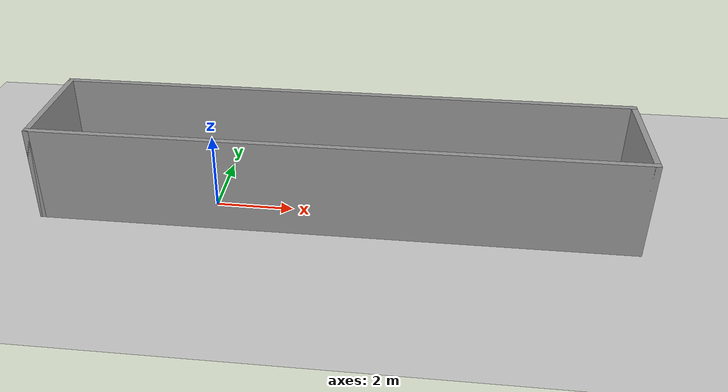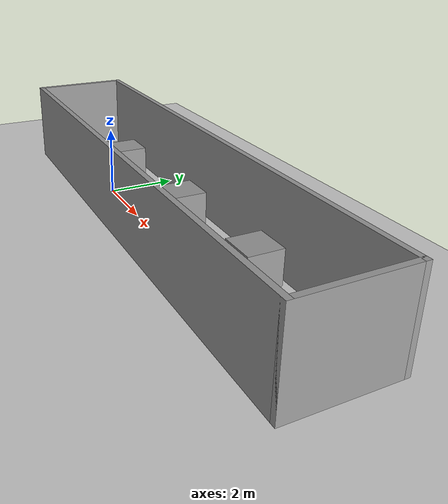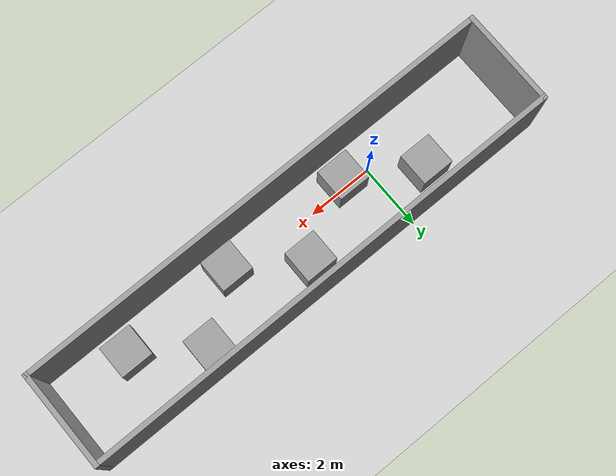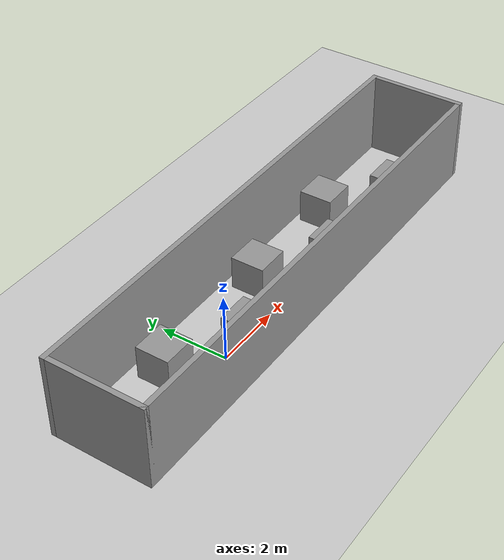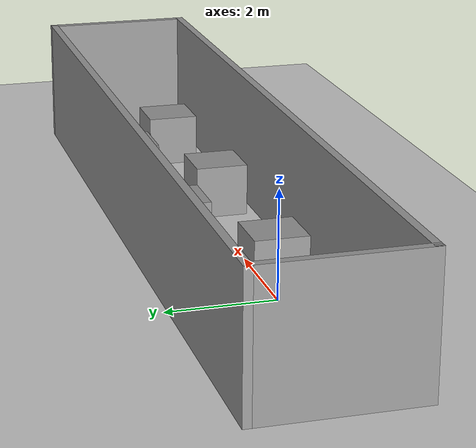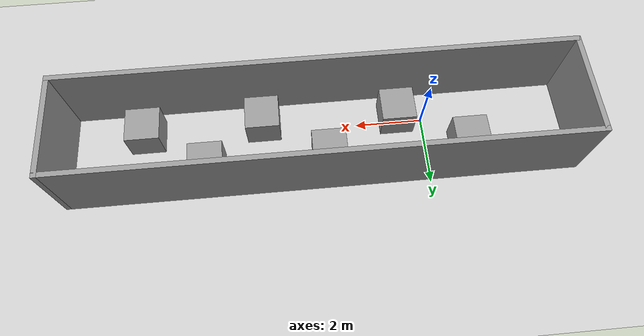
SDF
<sdf version="1.6">
 <world name="default">
  <light name="sun" type="directional">
   <pose>0 0 10 0 -0 0</pose>
   <diffuse>0.8 0.8 0.8 1</diffuse>
   <specular>0.1 0.1 0.1 1</specular>
   <attenuation>
    <range>1000</range>
    <constant>0.9</constant>
    <linear>0.01</linear>
    <quadratic>0.001</quadratic>
   </attenuation>
   <direction>-0.5 0.5 -1</direction>
  </light>
  <model name="ground_plane">
   <static>1</static>
   <link name="link">
    <collision name="collision">
     <geometry><plane><normal>0 0 1</normal><size>100 100</size></plane></geometry>
     <surface><friction><ode><mu>100</mu><mu2>50</mu2></ode></friction></surface>
    </collision>
    <visual name="visual">
     <cast_shadows>0</cast_shadows>
     <geometry><plane><normal>0 0 1</normal><size>100 100</size></plane></geometry>
     <material>
      <script><uri>file://media/materials/scripts/gazebo.material</uri><name>Gazebo/Grey</name></script>
     </material>
    </visual>
   </link>
  </model>
  <gravity>0 0 -9.8</gravity>
  <magnetic_field>6e-06 2.3e-05 -4.2e-05</magnetic_field>
  <atmosphere type="adiabatic"/>
  <physics name="default_physics" default="0" type="ode">
   <max_step_size>0.001</max_step_size>
   <real_time_factor>1</real_time_factor>
   <real_time_update_rate>1000</real_time_update_rate>
  </physics>
  <scene><ambient>0.4 0.4 0.4 1</ambient><background>0.7 0.7 0.7 1</background><shadows>1</shadows></scene>
  <spherical_coordinates>
   <surface_model>EARTH_WGS84</surface_model>
   <latitude_deg>0</latitude_deg>
   <longitude_deg>0</longitude_deg>
   <elevation>0</elevation>
   <heading_deg>0</heading_deg>
  </spherical_coordinates>
  <model name="s_world_base2">
   <pose>3.11512 0.430686 0 0 -0 0</pose>
   <link name="Wall_10">
    <collision name="Wall_10_Collision">
     <geometry><box><size>15 0.15 2.5</size></box></geometry>
     <pose>0 0 1.25 0 -0 0</pose>
    </collision>
    <visual name="Wall_10_Visual">
     <pose>0 0 1.25 0 -0 0</pose>
     <geometry><box><size>15 0.15 2.5</size></box></geometry>
     <material>
      <script><uri>file://media/materials/scripts/gazebo.material</uri><name>Gazebo/Grey</name></script>
      <ambient>1 1 1 1</ambient>
     </material>
    </visual>
    <pose>0 1.425 0 0 -0 3.14159</pose>
   </link>
   <link name="Wall_7">
    <collision name="Wall_7_Collision">
     <geometry><box><size>3 0.15 2.5</size></box></geometry>
     <pose>0 0 1.25 0 -0 0</pose>
    </collision>
    <visual name="Wall_7_Visual">
     <pose>0 0 1.25 0 -0 0</pose>
     <geometry><box><size>3 0.15 2.5</size></box></geometry>
     <material>
      <script><uri>file://media/materials/scripts/gazebo.material</uri><name>Gazebo/Grey</name></script>
      <ambient>1 1 1 1</ambient>
     </material>
    </visual>
    <pose>-7.425 0 0 0 0 -1.5708</pose>
   </link>
   <link name="Wall_8">
    <collision name="Wall_8_Collision">
     <geometry><box><size>15 0.15 2.5</size></box></geometry>
     <pose>0 0 1.25 0 -0 0</pose>
    </collision>
    <visual name="Wall_8_Visual">
     <pose>0 0 1.25 0 -0 0</pose>
     <geometry><box><size>15 0.15 2.5</size></box></geometry>
     <material>
      <script><uri>file://media/materials/scripts/gazebo.material</uri><name>Gazebo/Grey</name></script>
      <ambient>1 1 1 1</ambient>
     </material>
    </visual>
    <pose>0 -1.425 0 0 -0 0</pose>
   </link>
   <link name="Wall_9">
    <collision name="Wall_9_Collision">
     <geometry><box><size>3 0.15 2.5</size></box></geometry>
     <pose>0 0 1.25 0 -0 0</pose>
    </collision>
    <visual name="Wall_9_Visual">
     <pose>0 0 1.25 0 -0 0</pose>
     <geometry><box><size>3 0.15 2.5</size></box></geometry>
     <material>
      <script><uri>file://media/materials/scripts/gazebo.material</uri><name>Gazebo/Grey</name></script>
      <ambient>1 1 1 1</ambient>
     </material>
    </visual>
    <pose>7.425 0 0 0 -0 1.5708</pose>
   </link>
   <static>1</static>
  </model>
  <model name="unit_box_0">
   <pose>-1.23885 0.946431 0.499995 -1e-05 0 0</pose>
   <link name="link">
    <inertial>
     <mass>1</mass>
     <inertia>
      <ixx>0.166667</ixx>
      <ixy>0</ixy>
      <ixz>0</ixz>
      <iyy>0.166667</iyy>
      <iyz>0</iyz>
      <izz>0.166667</izz>
     </inertia>
    </inertial>
    <collision name="collision"><geometry><box><size>1 1 1</size></box></geometry></collision>
    <visual name="visual">
     <geometry><box><size>1 1 1</size></box></geometry>
     <material>
      <script><name>Gazebo/Grey</name><uri>file://media/materials/scripts/gazebo.material</uri></script>
     </material>
    </visual>
   </link>
  </model>
  <model name="unit_box_1">
   <pose>0.791193 -0.164015 0.499995 0 1e-05 0</pose>
   <link name="link">
    <inertial>
     <mass>1</mass>
     <inertia>
      <ixx>0.166667</ixx>
      <ixy>0</ixy>
      <ixz>0</ixz>
      <iyy>0.166667</iyy>
      <iyz>0</iyz>
      <izz>0.166667</izz>
     </inertia>
    </inertial>
    <collision name="collision"><geometry><box><size>1 1 1</size></box></geometry></collision>
    <visual name="visual">
     <geometry><box><size>1 1 1</size></box></geometry>
     <material>
      <script><name>Gazebo/Grey</name><uri>file://media/materials/scripts/gazebo.material</uri></script>
     </material>
    </visual>
   </link>
  </model>
  <model name="unit_box_2">
   <pose>2.91259 1.00375 0.499995 -1e-05 0 0</pose>
   <link name="link">
    <inertial>
     <mass>1</mass>
     <inertia>
      <ixx>0.166667</ixx>
      <ixy>0</ixy>
      <ixz>0</ixz>
      <iyy>0.166667</iyy>
      <iyz>0</iyz>
      <izz>0.166667</izz>
     </inertia>
    </inertial>
    <collision name="collision"><geometry><box><size>1 1 1</size></box></geometry></collision>
    <visual name="visual">
     <geometry><box><size>1 1 1</size></box></geometry>
     <material>
      <script><name>Gazebo/Grey</name><uri>file://media/materials/scripts/gazebo.material</uri></script>
     </material>
    </visual>
   </link>
  </model>
  <model name="unit_box_3">
   <pose>4.81592 -0.236327 0.499995 0 1e-05 0</pose>
   <link name="link">
    <inertial>
     <mass>1</mass>
     <inertia>
      <ixx>0.166667</ixx>
      <ixy>0</ixy>
      <ixz>0</ixz>
      <iyy>0.166667</iyy>
      <iyz>0</iyz>
      <izz>0.166667</izz>
     </inertia>
    </inertial>
    <collision name="collision"><geometry><box><size>1 1 1</size></box></geometry></collision>
    <visual name="visual">
     <geometry><box><size>1 1 1</size></box></geometry>
     <material>
      <script><name>Gazebo/Grey</name><uri>file://media/materials/scripts/gazebo.material</uri></script>
     </material>
    </visual>
   </link>
  </model>
  <model name="unit_box_4">
   <pose>6.49296 1.10834 0.499995 -1e-05 0 0</pose>
   <link name="link">
    <inertial>
     <mass>1</mass>
     <inertia>
      <ixx>0.166667</ixx>
      <ixy>0</ixy>
      <ixz>0</ixz>
      <iyy>0.166667</iyy>
      <iyz>0</iyz>
      <izz>0.166667</izz>
     </inertia>
    </inertial>
    <collision name="collision"><geometry><box><size>1 1 1</size></box></geometry></collision>
    <visual name="visual">
     <geometry><box><size>1 1 1</size></box></geometry>
     <material>
      <script><name>Gazebo/Grey</name><uri>file://media/materials/scripts/gazebo.material</uri></script>
     </material>
    </visual>
   </link>
  </model>
  <model name="unit_box_5">
   <pose>8.29863 -0.144221 0.5 0 -0 0</pose>
   <link name="link">
    <inertial>
     <mass>1</mass>
     <inertia>
      <ixx>0.166667</ixx>
      <ixy>0</ixy>
      <ixz>0</ixz>
      <iyy>0.166667</iyy>
      <iyz>0</iyz>
      <izz>0.166667</izz>
     </inertia>
    </inertial>
    <collision name="collision"><geometry><box><size>1 1 1</size></box></geometry></collision>
    <visual name="visual">
     <geometry><box><size>1 1 1</size></box></geometry>
     <material>
      <script><name>Gazebo/Grey</name><uri>file://media/materials/scripts/gazebo.material</uri></script>
     </material>
    </visual>
   </link>
  </model>
 </world>
</sdf>
